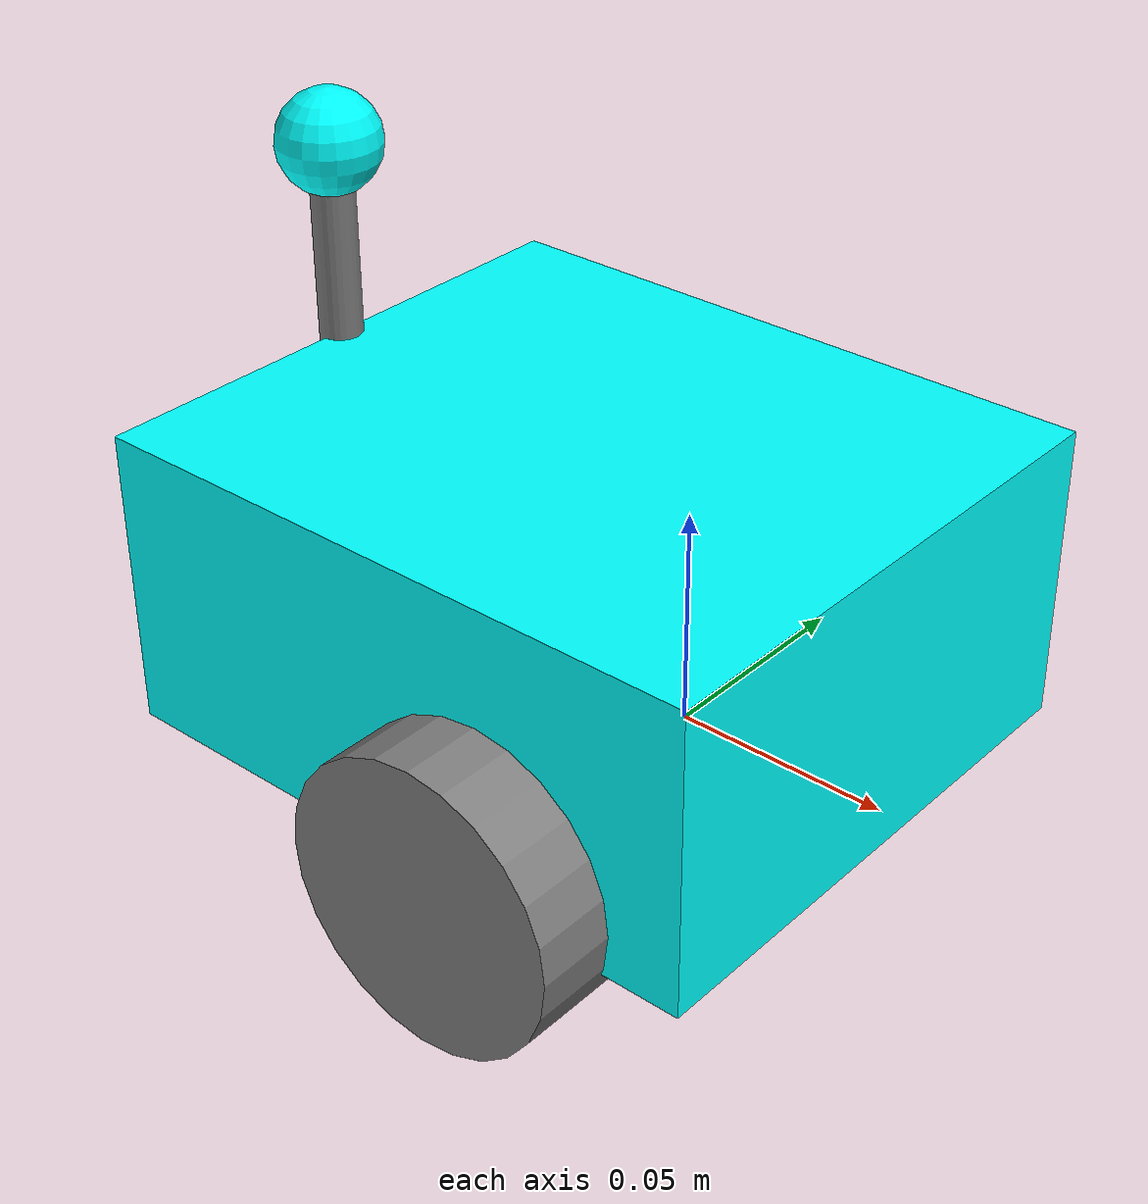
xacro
<?xml version="1.0" ?>
<robot name='robot' xmlns:xacro="http://ros.org/wiki/xacro">

    <xacro:include filename="$(find my_robot)/urdf/robot.gazebo.xacro" />
    <!--xacro:include filename="$(find robot_description)/urdf/lidar.urdf.xacro" /-->
    <!--xacro:include filename="$(find robot_description)/urdf/depth.urdf.xacro" /-->

    <xacro:property name="chassis_length" value="0.15"/>
    <xacro:property name="chassis_width" value="0.13"/>
    <xacro:property name="chassis_height" value="0.07"/>

    <xacro:property name="wheel_radius" value="0.033"/>
    <xacro:property name="wheel_thickness" value="0.026"/>
    <xacro:property name="wheel_mass" value="0.05"/>

    <xacro:property name="wheel_offset_x" value="0.1"/>
    <xacro:property name="wheel_offset_y" value="0.07"/>
    <xacro:property name="wheel_offset_z" value="0.01"/>

    <xacro:property name="caster_wheel_radius" value="0.01"/>
    <xacro:property name="caster_wheel_mass" value="0.01"/>
    <xacro:property name="caster_wheel_offset_x" value="0.075"/>
    <xacro:property name="caster_wheel_offset_z" value="${wheel_offset_z - wheel_radius + caster_wheel_radius}"/>
    <xacro:property name="mass" value="1.0"/>

    <material name="Cyan">
        <color rgba="0 1.0 1.0 1.0"/>
    </material>

    <material name="Gray">
          <color rgba="0.5 0.5 0.5 1.0"/>
    </material>

    <link name="base_link">
    </link>

    <link name="base_footprint">
    </link>

    <joint name="base_footprint_joint" type="fixed">
        <parent link="base_link"/>
        <child link="base_footprint"/>
        <origin xyz="0 0 -0.138" rpy="0 0 0"/>
    </joint>

    <joint name="chassis_joint" type="fixed">
        <parent link="base_link"/>
        <child link="chassis"/>
        <origin xyz="${-wheel_offset_x} 0 ${-wheel_offset_z}"/>
    </joint>

    <link name='chassis'>

    <inertial>
        <origin xyz="${chassis_length/2} 0 ${chassis_height/2}" rpy="0 0 0"/>
        <mass value="${mass}" />
        <inertia ixx="${(1/12) * mass * (chassis_width*chassis_width+chassis_height*chassis_height)}" ixy="0.0" ixz="0.0"
                 iyy="${(1/12) * mass * (chassis_length*chassis_length+chassis_height*chassis_height)}" iyz="0.0"
                 izz="${(1/12) * mass * (chassis_length*chassis_length+chassis_width*chassis_width)}" />
    </inertial>
    <visual>
        <origin xyz="${chassis_length/2} 0 ${chassis_height/2}"/>
        <geometry>
            <box size="${chassis_length} ${chassis_width} ${chassis_height}"/>
        </geometry>
        <material name="Cyan"/>
    </visual>
    <collision>
        <origin xyz="${chassis_length/2} 0 ${chassis_height/2}"/>
        <geometry>
            <box size="${chassis_length} ${chassis_width} ${chassis_height}"/>
        </geometry>
    </collision>
    </link>

    <joint name="left_wheel_joint" type="continuous">
        <parent link="base_link"/>
        <child link="left_wheel"/>
        <origin xyz="0 ${wheel_offset_y} 0" rpy="-${pi/2} 0 0" />
        <axis xyz="0 0 1"/>
    </joint>

    <link name="left_wheel">
        <visual>
            <geometry>
                <cylinder radius="${wheel_radius}" length="${wheel_thickness}"/>
            </geometry>
            <material name="Gray"/>
        </visual>
        <collision>
            <geometry>
                <sphere radius="${wheel_radius}"/>
            </geometry>
        </collision>
        <inertial>
            <origin xyz="0 0 0" rpy="0 0 0"/>
            <mass value="${wheel_mass}" />
            <inertia ixx="${(1/12) * wheel_mass * (3*wheel_radius*wheel_radius + wheel_thickness*wheel_thickness)}" ixy="0.0" ixz="0.0"
                     iyy="${(1/12) * wheel_mass * (3*wheel_radius*wheel_radius + wheel_thickness*wheel_thickness)}" iyz="0.0"
                     izz="${(1/2) * wheel_mass * (wheel_radius*wheel_radius)}" />
        </inertial>
    </link>

    <joint name="right_wheel_joint" type="continuous">
        <parent link="base_link"/>
        <child link="right_wheel"/>
        <origin xyz="0 ${-wheel_offset_y} 0" rpy="${pi/2} 0 0" />
        <axis xyz="0 0 -1"/>
    </joint>

    <link name="right_wheel">
        <visual>
            <geometry>
                <cylinder radius="${wheel_radius}" length="${wheel_thickness}"/>
            </geometry>
            <material name="Gray"/>
        </visual>
        <collision>
            <geometry>
                <sphere radius="${wheel_radius}"/>
            </geometry>
        </collision>
        <inertial>
            <origin xyz="0 0 0" rpy="0 0 0"/>
            <mass value="${wheel_mass}" />
            <inertia ixx="${(1/12) * wheel_mass * (3*wheel_radius*wheel_radius + wheel_thickness*wheel_thickness)}" ixy="0.0" ixz="0.0"
                     iyy="${(1/12) * wheel_mass * (3*wheel_radius*wheel_radius + wheel_thickness*wheel_thickness)}" iyz="0.0"
                     izz="${(1/2) * wheel_mass * (wheel_radius*wheel_radius)}" />
        </inertial>
    </link>

    <joint name="caster_wheel_joint" type="fixed">
        <parent link="chassis"/>
        <child link="caster_wheel"/>
        <origin xyz="${caster_wheel_offset_x} 0 ${caster_wheel_offset_z}"/>
    </joint>

    <link name="caster_wheel">
        <visual>
            <geometry>
                <sphere radius="${caster_wheel_radius}"/>
            </geometry>
            <material name="Cyan"/>
        </visual>
        <collision>
            <geometry>
                <sphere radius="${caster_wheel_radius}"/>
            </geometry>
        </collision>
        <inertial>
            <origin xyz="0 0 0" rpy="0 0 0"/>
            <mass value="${caster_wheel_mass}" />
            <inertia ixx="${(2/5) * caster_wheel_mass * (caster_wheel_radius*caster_wheel_radius)}" ixy="0.0" ixz="0.0"
                     iyy="${(2/5) * caster_wheel_mass * (caster_wheel_radius*caster_wheel_radius)}" iyz="0.0"
                     izz="${(2/5) * caster_wheel_mass * (caster_wheel_radius*caster_wheel_radius)}" />
        </inertial>
    </link>

    <gazebo reference="caster_wheel">
        <mu1 value="0.001"/>
        <mu2 value="0.001"/>
    </gazebo>

    <!-- ANTENNA -->
    <link name="antenna_base">
        <visual>
            <origin xyz="0 0 0" rpy="0 0 0"/>
            <geometry>
                <cylinder radius="0.005" length="0.08"/>
            </geometry>
            <material name="Gray"/>
        </visual>
    </link>

    <joint name="antenna_base_joint" type="fixed">
        <parent link="chassis"/>
        <child link="antenna_base"/>
        <origin xyz="0 0 ${chassis_height/2 + 0.04}" rpy="0 0 0"/>
    </joint>

    <link name="antenna_tip">
        <visual>
            <origin xyz="0 0 0"/>
            <geometry>
                <sphere radius="0.012"/>
            </geometry>
            <material name="Cyan"/>
        </visual>
    </link>

    <joint name="antenna_tip_joint" type="fixed">
        <parent link="antenna_base"/>
        <child link="antenna_tip"/>
        <origin xyz="0 0 0.04" rpy="0 0 0"/>
    </joint>
</robot>
